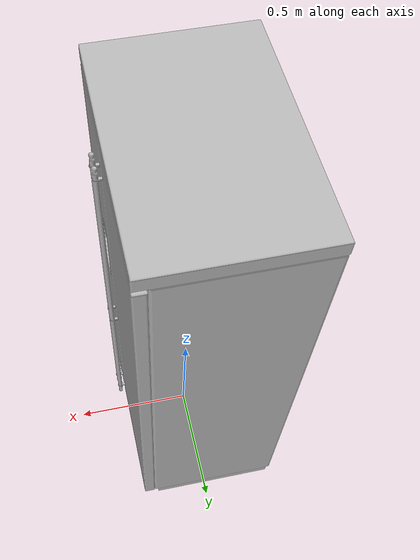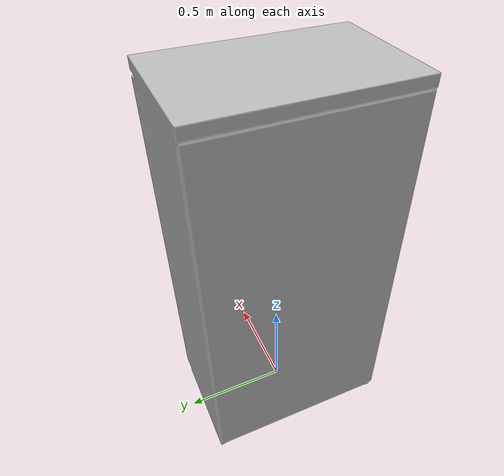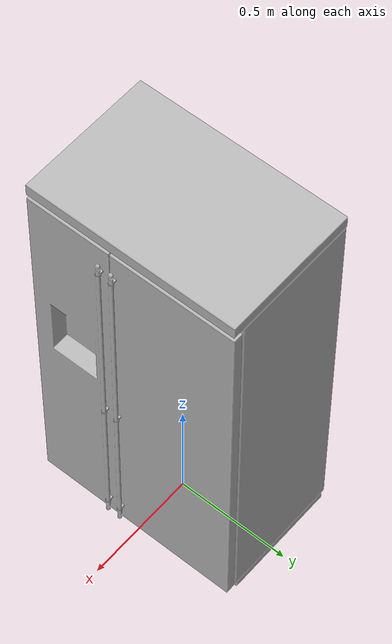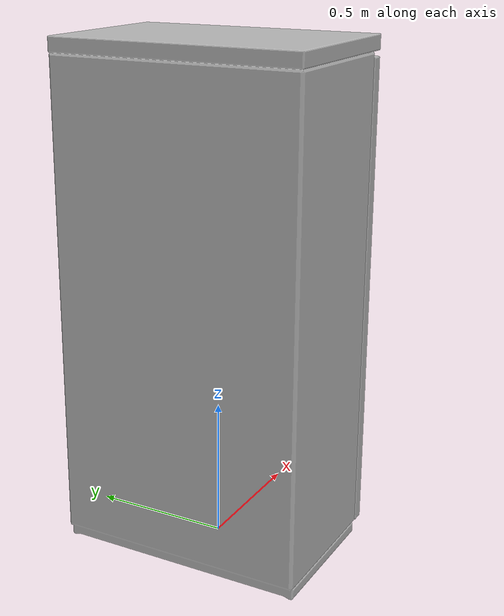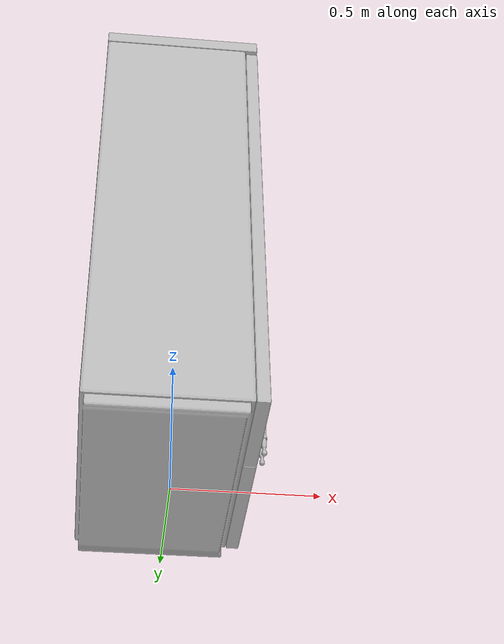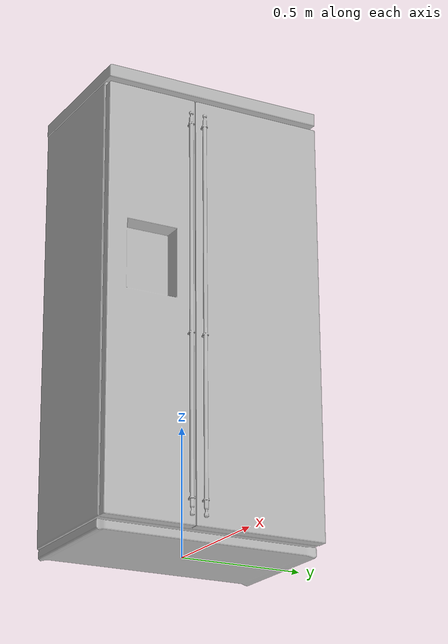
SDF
<?xml version='1.0'?>
<sdf version='1.4'>
  <model name='131'>
    <pose>0 0 0 0 0 0</pose>
    <static>true</static>
    <link name='link'>
      <collision name='collision'>
        <pose>0 0 0 0 0 0</pose>
        <geometry>
          <box>
            <size>0.62087 0.9 2</size>
          </box>
        </geometry>
      </collision>
      <visual name='visual'>
        <pose>0 0 0 0 0 0</pose>
        <geometry>
          <mesh><uri>model://131/131.dae</uri></mesh>
        </geometry>
      </visual>
    </link>
  </model>
</sdf>
